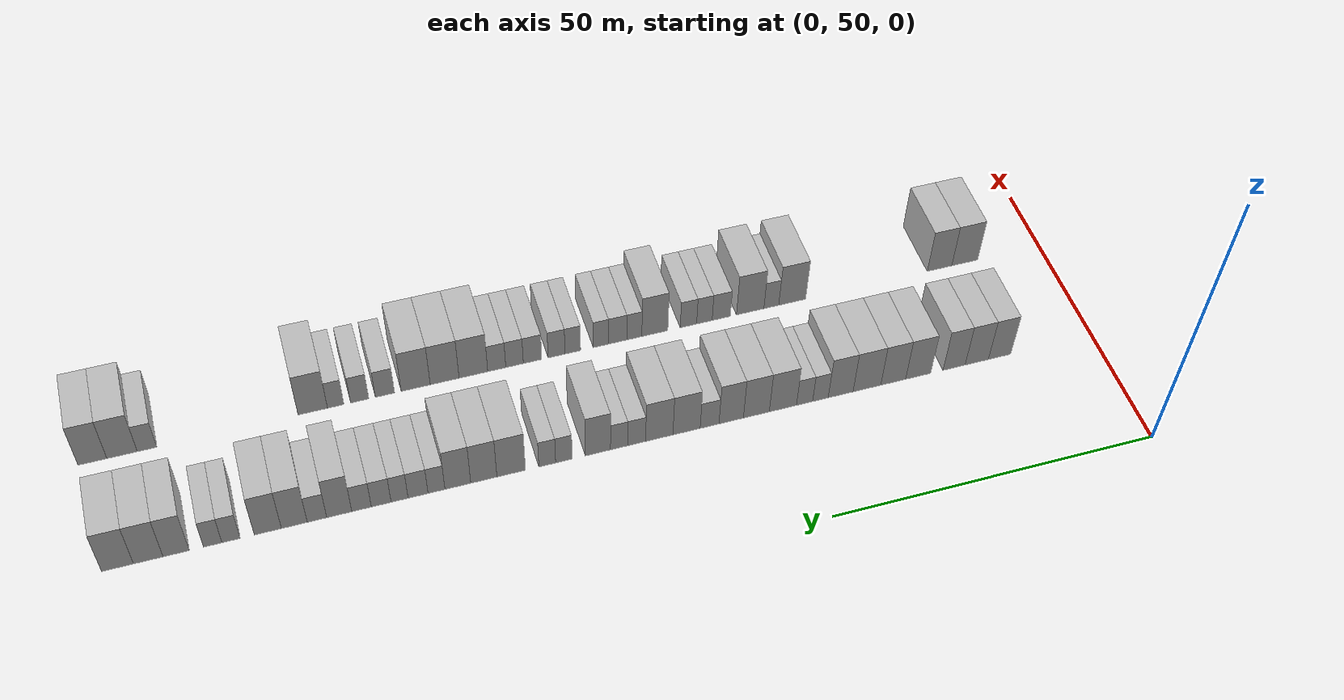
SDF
<sdf version="1.6">
 <world name="default">
  <model name="building_63">
   <static>1</static>
   <pose>25.0000 65.3889 0 0.000000 0.000000 0.000000</pose>
   <link name="link">
    <pose>0 0 4.50 0 0 0</pose>
    <collision name="collision"><geometry><box><size>10.0000 3.7011 9.0000</size></box></geometry></collision>
    <visual name="visual">
     <cast_shadows>0</cast_shadows>
     <geometry><box><size>10.0000 3.7011 9.0000</size></box></geometry>
     <material>
      <script>
       <uri>model://HANNAS_wall/materials/scripts</uri>
       <uri>model://HANNAS_wall/materials/textures</uri>
       <name>vrc/HANNAS_wall</name>
      </script>
     </material>
    </visual>
   </link>
  </model>
  <model name="building_64">
   <static>1</static>
   <pose>25.0000 69.1445 0 0.000000 0.000000 0.000000</pose>
   <link name="link">
    <pose>0 0 4.50 0 0 0</pose>
    <collision name="collision"><geometry><box><size>10.0000 3.8100 9.0000</size></box></geometry></collision>
    <visual name="visual">
     <cast_shadows>0</cast_shadows>
     <geometry><box><size>10.0000 3.8100 9.0000</size></box></geometry>
     <material>
      <script>
       <uri>model://HANNAS_wall/materials/scripts</uri>
       <uri>model://HANNAS_wall/materials/textures</uri>
       <name>vrc/HANNAS_wall</name>
      </script>
     </material>
    </visual>
   </link>
  </model>
  <model name="building_65">
   <static>1</static>
   <pose>25.0000 72.8542 0 0.000000 0.000000 0.000000</pose>
   <link name="link">
    <pose>0 0 4.50 0 0 0</pose>
    <collision name="collision"><geometry><box><size>10.0000 3.6094 9.0000</size></box></geometry></collision>
    <visual name="visual">
     <cast_shadows>0</cast_shadows>
     <geometry><box><size>10.0000 3.6094 9.0000</size></box></geometry>
     <material>
      <script>
       <uri>model://HANNAS_wall/materials/scripts</uri>
       <uri>model://HANNAS_wall/materials/textures</uri>
       <name>vrc/HANNAS_wall</name>
      </script>
     </material>
    </visual>
   </link>
  </model>
  <model name="building_66">
   <static>1</static>
   <pose>25.0000 78.6925 0 0.000000 0.000000 0.000000</pose>
   <link name="link">
    <pose>0 0 4.50 0 0 0</pose>
    <collision name="collision"><geometry><box><size>10.0000 4.0673 9.0000</size></box></geometry></collision>
    <visual name="visual">
     <cast_shadows>0</cast_shadows>
     <geometry><box><size>10.0000 4.0673 9.0000</size></box></geometry>
     <material>
      <script>
       <uri>model://HANNAS_wall/materials/scripts</uri>
       <uri>model://HANNAS_wall/materials/textures</uri>
       <name>vrc/HANNAS_wall</name>
      </script>
     </material>
    </visual>
   </link>
  </model>
  <model name="building_67">
   <static>1</static>
   <pose>25.0000 82.7289 0 0.000000 0.000000 0.000000</pose>
   <link name="link">
    <pose>0 0 4.50 0 0 0</pose>
    <collision name="collision"><geometry><box><size>10.0000 4.0054 9.0000</size></box></geometry></collision>
    <visual name="visual">
     <cast_shadows>0</cast_shadows>
     <geometry><box><size>10.0000 4.0054 9.0000</size></box></geometry>
     <material>
      <script>
       <uri>model://HANNAS_wall/materials/scripts</uri>
       <uri>model://HANNAS_wall/materials/textures</uri>
       <name>vrc/HANNAS_wall</name>
      </script>
     </material>
    </visual>
   </link>
  </model>
  <model name="building_68">
   <static>1</static>
   <pose>25.0000 86.9607 0 0.000000 0.000000 0.000000</pose>
   <link name="link">
    <pose>0 0 4.50 0 0 0</pose>
    <collision name="collision"><geometry><box><size>10.0000 4.4581 9.0000</size></box></geometry></collision>
    <visual name="visual">
     <cast_shadows>0</cast_shadows>
     <geometry><box><size>10.0000 4.4581 9.0000</size></box></geometry>
     <material>
      <script>
       <uri>model://HANNAS_wall/materials/scripts</uri>
       <uri>model://HANNAS_wall/materials/textures</uri>
       <name>vrc/HANNAS_wall</name>
      </script>
     </material>
    </visual>
   </link>
  </model>
  <model name="building_69">
   <static>1</static>
   <pose>25.0000 91.1785 0 0.000000 0.000000 0.000000</pose>
   <link name="link">
    <pose>0 0 4.50 0 0 0</pose>
    <collision name="collision"><geometry><box><size>10.0000 3.9776 9.0000</size></box></geometry></collision>
    <visual name="visual">
     <cast_shadows>0</cast_shadows>
     <geometry><box><size>10.0000 3.9776 9.0000</size></box></geometry>
     <material>
      <script>
       <uri>model://HANNAS_wall/materials/scripts</uri>
       <uri>model://HANNAS_wall/materials/textures</uri>
       <name>vrc/HANNAS_wall</name>
      </script>
     </material>
    </visual>
   </link>
  </model>
  <model name="building_70">
   <static>1</static>
   <pose>25.0000 94.4016 0 0.000000 0.000000 0.000000</pose>
   <link name="link">
    <pose>0 0 3.00 0 0 0</pose>
    <collision name="collision"><geometry><box><size>10.0000 2.4686 6.0000</size></box></geometry></collision>
    <visual name="visual">
     <cast_shadows>0</cast_shadows>
     <geometry><box><size>10.0000 2.4686 6.0000</size></box></geometry>
     <material>
      <script>
       <uri>model://HANNAS_wall/materials/scripts</uri>
       <uri>model://HANNAS_wall/materials/textures</uri>
       <name>vrc/HANNAS_wall</name>
      </script>
     </material>
    </visual>
   </link>
  </model>
  <model name="building_71">
   <static>1</static>
   <pose>25.0000 96.9137 0 0.000000 0.000000 0.000000</pose>
   <link name="link">
    <pose>0 0 3.00 0 0 0</pose>
    <collision name="collision"><geometry><box><size>10.0000 2.5554 6.0000</size></box></geometry></collision>
    <visual name="visual">
     <cast_shadows>0</cast_shadows>
     <geometry><box><size>10.0000 2.5554 6.0000</size></box></geometry>
     <material>
      <script>
       <uri>model://HANNAS_wall/materials/scripts</uri>
       <uri>model://HANNAS_wall/materials/textures</uri>
       <name>vrc/HANNAS_wall</name>
      </script>
     </material>
    </visual>
   </link>
  </model>
  <model name="building_72">
   <static>1</static>
   <pose>25.0000 100.3317 0 0.000000 0.000000 0.000000</pose>
   <link name="link">
    <pose>0 0 4.50 0 0 0</pose>
    <collision name="collision"><geometry><box><size>10.0000 4.2807 9.0000</size></box></geometry></collision>
    <visual name="visual">
     <cast_shadows>0</cast_shadows>
     <geometry><box><size>10.0000 4.2807 9.0000</size></box></geometry>
     <material>
      <script>
       <uri>model://HANNAS_wall/materials/scripts</uri>
       <uri>model://HANNAS_wall/materials/textures</uri>
       <name>vrc/HANNAS_wall</name>
      </script>
     </material>
    </visual>
   </link>
  </model>
  <model name="building_73">
   <static>1</static>
   <pose>25.0000 104.4996 0 0.000000 0.000000 0.000000</pose>
   <link name="link">
    <pose>0 0 4.50 0 0 0</pose>
    <collision name="collision"><geometry><box><size>10.0000 4.0551 9.0000</size></box></geometry></collision>
    <visual name="visual">
     <cast_shadows>0</cast_shadows>
     <geometry><box><size>10.0000 4.0551 9.0000</size></box></geometry>
     <material>
      <script>
       <uri>model://HANNAS_wall/materials/scripts</uri>
       <uri>model://HANNAS_wall/materials/textures</uri>
       <name>vrc/HANNAS_wall</name>
      </script>
     </material>
    </visual>
   </link>
  </model>
  <model name="building_74">
   <static>1</static>
   <pose>25.0000 108.4333 0 0.000000 0.000000 0.000000</pose>
   <link name="link">
    <pose>0 0 4.50 0 0 0</pose>
    <collision name="collision"><geometry><box><size>10.0000 3.8122 9.0000</size></box></geometry></collision>
    <visual name="visual">
     <cast_shadows>0</cast_shadows>
     <geometry><box><size>10.0000 3.8122 9.0000</size></box></geometry>
     <material>
      <script>
       <uri>model://HANNAS_wall/materials/scripts</uri>
       <uri>model://HANNAS_wall/materials/textures</uri>
       <name>vrc/HANNAS_wall</name>
      </script>
     </material>
    </visual>
   </link>
  </model>
  <model name="building_75">
   <static>1</static>
   <pose>25.0000 111.7978 0 0.000000 0.000000 0.000000</pose>
   <link name="link">
    <pose>0 0 3.00 0 0 0</pose>
    <collision name="collision"><geometry><box><size>10.0000 2.9169 6.0000</size></box></geometry></collision>
    <visual name="visual">
     <cast_shadows>0</cast_shadows>
     <geometry><box><size>10.0000 2.9169 6.0000</size></box></geometry>
     <material>
      <script>
       <uri>model://HANNAS_wall/materials/scripts</uri>
       <uri>model://HANNAS_wall/materials/textures</uri>
       <name>vrc/HANNAS_wall</name>
      </script>
     </material>
    </visual>
   </link>
  </model>
  <model name="building_76">
   <static>1</static>
   <pose>25.0000 115.3557 0 0.000000 0.000000 0.000000</pose>
   <link name="link">
    <pose>0 0 4.50 0 0 0</pose>
    <collision name="collision"><geometry><box><size>10.0000 4.1988 9.0000</size></box></geometry></collision>
    <visual name="visual">
     <cast_shadows>0</cast_shadows>
     <geometry><box><size>10.0000 4.1988 9.0000</size></box></geometry>
     <material>
      <script>
       <uri>model://HANNAS_wall/materials/scripts</uri>
       <uri>model://HANNAS_wall/materials/textures</uri>
       <name>vrc/HANNAS_wall</name>
      </script>
     </material>
    </visual>
   </link>
  </model>
  <model name="building_77">
   <static>1</static>
   <pose>25.0000 119.5593 0 0.000000 0.000000 0.000000</pose>
   <link name="link">
    <pose>0 0 4.50 0 0 0</pose>
    <collision name="collision"><geometry><box><size>10.0000 4.2084 9.0000</size></box></geometry></collision>
    <visual name="visual">
     <cast_shadows>0</cast_shadows>
     <geometry><box><size>10.0000 4.2084 9.0000</size></box></geometry>
     <material>
      <script>
       <uri>model://HANNAS_wall/materials/scripts</uri>
       <uri>model://HANNAS_wall/materials/textures</uri>
       <name>vrc/HANNAS_wall</name>
      </script>
     </material>
    </visual>
   </link>
  </model>
  <model name="building_78">
   <static>1</static>
   <pose>25.0000 123.0336 0 0.000000 0.000000 0.000000</pose>
   <link name="link">
    <pose>0 0 3.00 0 0 0</pose>
    <collision name="collision"><geometry><box><size>10.0000 2.7403 6.0000</size></box></geometry></collision>
    <visual name="visual">
     <cast_shadows>0</cast_shadows>
     <geometry><box><size>10.0000 2.7403 6.0000</size></box></geometry>
     <material>
      <script>
       <uri>model://HANNAS_wall/materials/scripts</uri>
       <uri>model://HANNAS_wall/materials/textures</uri>
       <name>vrc/HANNAS_wall</name>
      </script>
     </material>
    </visual>
   </link>
  </model>
  <model name="building_79">
   <static>1</static>
   <pose>25.0000 125.7088 0 0.000000 0.000000 0.000000</pose>
   <link name="link">
    <pose>0 0 3.00 0 0 0</pose>
    <collision name="collision"><geometry><box><size>10.0000 2.6101 6.0000</size></box></geometry></collision>
    <visual name="visual">
     <cast_shadows>0</cast_shadows>
     <geometry><box><size>10.0000 2.6101 6.0000</size></box></geometry>
     <material>
      <script>
       <uri>model://HANNAS_wall/materials/scripts</uri>
       <uri>model://HANNAS_wall/materials/textures</uri>
       <name>vrc/HANNAS_wall</name>
      </script>
     </material>
    </visual>
   </link>
  </model>
  <model name="building_80">
   <static>1</static>
   <pose>25.0000 128.9131 0 0.000000 0.000000 0.000000</pose>
   <link name="link">
    <pose>0 0 4.50 0 0 0</pose>
    <collision name="collision"><geometry><box><size>10.0000 3.7985 9.0000</size></box></geometry></collision>
    <visual name="visual">
     <cast_shadows>0</cast_shadows>
     <geometry><box><size>10.0000 3.7985 9.0000</size></box></geometry>
     <material>
      <script>
       <uri>model://HANNAS_wall/materials/scripts</uri>
       <uri>model://HANNAS_wall/materials/textures</uri>
       <name>vrc/HANNAS_wall</name>
      </script>
     </material>
    </visual>
   </link>
  </model>
  <model name="building_81">
   <static>1</static>
   <pose>25.0000 134.0607 0 0.000000 0.000000 0.000000</pose>
   <link name="link">
    <pose>0 0 3.00 0 0 0</pose>
    <collision name="collision"><geometry><box><size>10.0000 2.4966 6.0000</size></box></geometry></collision>
    <visual name="visual">
     <cast_shadows>0</cast_shadows>
     <geometry><box><size>10.0000 2.4966 6.0000</size></box></geometry>
     <material>
      <script>
       <uri>model://HANNAS_wall/materials/scripts</uri>
       <uri>model://HANNAS_wall/materials/textures</uri>
       <name>vrc/HANNAS_wall</name>
      </script>
     </material>
    </visual>
   </link>
  </model>
  <model name="building_82">
   <static>1</static>
   <pose>25.0000 136.5666 0 0.000000 0.000000 0.000000</pose>
   <link name="link">
    <pose>0 0 3.00 0 0 0</pose>
    <collision name="collision"><geometry><box><size>10.0000 2.5152 6.0000</size></box></geometry></collision>
    <visual name="visual">
     <cast_shadows>0</cast_shadows>
     <geometry><box><size>10.0000 2.5152 6.0000</size></box></geometry>
     <material>
      <script>
       <uri>model://HANNAS_wall/materials/scripts</uri>
       <uri>model://HANNAS_wall/materials/textures</uri>
       <name>vrc/HANNAS_wall</name>
      </script>
     </material>
    </visual>
   </link>
  </model>
  <model name="building_83">
   <static>1</static>
   <pose>25.0000 141.9532 0 0.000000 0.000000 0.000000</pose>
   <link name="link">
    <pose>0 0 4.50 0 0 0</pose>
    <collision name="collision"><geometry><box><size>10.0000 4.2581 9.0000</size></box></geometry></collision>
    <visual name="visual">
     <cast_shadows>0</cast_shadows>
     <geometry><box><size>10.0000 4.2581 9.0000</size></box></geometry>
     <material>
      <script>
       <uri>model://HANNAS_wall/materials/scripts</uri>
       <uri>model://HANNAS_wall/materials/textures</uri>
       <name>vrc/HANNAS_wall</name>
      </script>
     </material>
    </visual>
   </link>
  </model>
  <model name="building_84">
   <static>1</static>
   <pose>25.0000 146.0187 0 0.000000 0.000000 0.000000</pose>
   <link name="link">
    <pose>0 0 4.50 0 0 0</pose>
    <collision name="collision"><geometry><box><size>10.0000 3.8728 9.0000</size></box></geometry></collision>
    <visual name="visual">
     <cast_shadows>0</cast_shadows>
     <geometry><box><size>10.0000 3.8728 9.0000</size></box></geometry>
     <material>
      <script>
       <uri>model://HANNAS_wall/materials/scripts</uri>
       <uri>model://HANNAS_wall/materials/textures</uri>
       <name>vrc/HANNAS_wall</name>
      </script>
     </material>
    </visual>
   </link>
  </model>
  <model name="building_85">
   <static>1</static>
   <pose>25.0000 149.8586 0 0.000000 0.000000 0.000000</pose>
   <link name="link">
    <pose>0 0 4.50 0 0 0</pose>
    <collision name="collision"><geometry><box><size>10.0000 3.8070 9.0000</size></box></geometry></collision>
    <visual name="visual">
     <cast_shadows>0</cast_shadows>
     <geometry><box><size>10.0000 3.8070 9.0000</size></box></geometry>
     <material>
      <script>
       <uri>model://HANNAS_wall/materials/scripts</uri>
       <uri>model://HANNAS_wall/materials/textures</uri>
       <name>vrc/HANNAS_wall</name>
      </script>
     </material>
    </visual>
   </link>
  </model>
  <model name="building_86">
   <static>1</static>
   <pose>25.0000 153.0011 0 0.000000 0.000000 0.000000</pose>
   <link name="link">
    <pose>0 0 3.00 0 0 0</pose>
    <collision name="collision"><geometry><box><size>10.0000 2.4779 6.0000</size></box></geometry></collision>
    <visual name="visual">
     <cast_shadows>0</cast_shadows>
     <geometry><box><size>10.0000 2.4779 6.0000</size></box></geometry>
     <material>
      <script>
       <uri>model://HANNAS_wall/materials/scripts</uri>
       <uri>model://HANNAS_wall/materials/textures</uri>
       <name>vrc/HANNAS_wall</name>
      </script>
     </material>
    </visual>
   </link>
  </model>
  <model name="building_87">
   <static>1</static>
   <pose>25.0000 155.6982 0 0.000000 0.000000 0.000000</pose>
   <link name="link">
    <pose>0 0 3.00 0 0 0</pose>
    <collision name="collision"><geometry><box><size>10.0000 2.9162 6.0000</size></box></geometry></collision>
    <visual name="visual">
     <cast_shadows>0</cast_shadows>
     <geometry><box><size>10.0000 2.9162 6.0000</size></box></geometry>
     <material>
      <script>
       <uri>model://HANNAS_wall/materials/scripts</uri>
       <uri>model://HANNAS_wall/materials/textures</uri>
       <name>vrc/HANNAS_wall</name>
      </script>
     </material>
    </visual>
   </link>
  </model>
  <model name="building_88">
   <static>1</static>
   <pose>25.0000 158.3941 0 0.000000 0.000000 0.000000</pose>
   <link name="link">
    <pose>0 0 3.00 0 0 0</pose>
    <collision name="collision"><geometry><box><size>10.0000 2.4756 6.0000</size></box></geometry></collision>
    <visual name="visual">
     <cast_shadows>0</cast_shadows>
     <geometry><box><size>10.0000 2.4756 6.0000</size></box></geometry>
     <material>
      <script>
       <uri>model://HANNAS_wall/materials/scripts</uri>
       <uri>model://HANNAS_wall/materials/textures</uri>
       <name>vrc/HANNAS_wall</name>
      </script>
     </material>
    </visual>
   </link>
  </model>
  <model name="building_89">
   <static>1</static>
   <pose>25.0000 161.0663 0 0.000000 0.000000 0.000000</pose>
   <link name="link">
    <pose>0 0 3.00 0 0 0</pose>
    <collision name="collision"><geometry><box><size>10.0000 2.8687 6.0000</size></box></geometry></collision>
    <visual name="visual">
     <cast_shadows>0</cast_shadows>
     <geometry><box><size>10.0000 2.8687 6.0000</size></box></geometry>
     <material>
      <script>
       <uri>model://HANNAS_wall/materials/scripts</uri>
       <uri>model://HANNAS_wall/materials/textures</uri>
       <name>vrc/HANNAS_wall</name>
      </script>
     </material>
    </visual>
   </link>
  </model>
  <model name="building_90">
   <static>1</static>
   <pose>25.0000 163.9121 0 0.000000 0.000000 0.000000</pose>
   <link name="link">
    <pose>0 0 3.00 0 0 0</pose>
    <collision name="collision"><geometry><box><size>10.0000 2.8230 6.0000</size></box></geometry></collision>
    <visual name="visual">
     <cast_shadows>0</cast_shadows>
     <geometry><box><size>10.0000 2.8230 6.0000</size></box></geometry>
     <material>
      <script>
       <uri>model://HANNAS_wall/materials/scripts</uri>
       <uri>model://HANNAS_wall/materials/textures</uri>
       <name>vrc/HANNAS_wall</name>
      </script>
     </material>
    </visual>
   </link>
  </model>
  <model name="building_91">
   <static>1</static>
   <pose>25.0000 167.1286 0 0.000000 0.000000 0.000000</pose>
   <link name="link">
    <pose>0 0 4.50 0 0 0</pose>
    <collision name="collision"><geometry><box><size>10.0000 3.6099 9.0000</size></box></geometry></collision>
    <visual name="visual">
     <cast_shadows>0</cast_shadows>
     <geometry><box><size>10.0000 3.6099 9.0000</size></box></geometry>
     <material>
      <script>
       <uri>model://HANNAS_wall/materials/scripts</uri>
       <uri>model://HANNAS_wall/materials/textures</uri>
       <name>vrc/HANNAS_wall</name>
      </script>
     </material>
    </visual>
   </link>
  </model>
  <model name="building_92">
   <static>1</static>
   <pose>25.0000 170.3273 0 0.000000 0.000000 0.000000</pose>
   <link name="link">
    <pose>0 0 3.00 0 0 0</pose>
    <collision name="collision"><geometry><box><size>10.0000 2.7876 6.0000</size></box></geometry></collision>
    <visual name="visual">
     <cast_shadows>0</cast_shadows>
     <geometry><box><size>10.0000 2.7876 6.0000</size></box></geometry>
     <material>
      <script>
       <uri>model://HANNAS_wall/materials/scripts</uri>
       <uri>model://HANNAS_wall/materials/textures</uri>
       <name>vrc/HANNAS_wall</name>
      </script>
     </material>
    </visual>
   </link>
  </model>
  <model name="building_93">
   <static>1</static>
   <pose>25.0000 173.5699 0 0.000000 0.000000 0.000000</pose>
   <link name="link">
    <pose>0 0 4.50 0 0 0</pose>
    <collision name="collision"><geometry><box><size>10.0000 3.6975 9.0000</size></box></geometry></collision>
    <visual name="visual">
     <cast_shadows>0</cast_shadows>
     <geometry><box><size>10.0000 3.6975 9.0000</size></box></geometry>
     <material>
      <script>
       <uri>model://HANNAS_wall/materials/scripts</uri>
       <uri>model://HANNAS_wall/materials/textures</uri>
       <name>vrc/HANNAS_wall</name>
      </script>
     </material>
    </visual>
   </link>
  </model>
  <model name="building_94">
   <static>1</static>
   <pose>25.0000 177.3409 0 0.000000 0.000000 0.000000</pose>
   <link name="link">
    <pose>0 0 4.50 0 0 0</pose>
    <collision name="collision"><geometry><box><size>10.0000 3.8446 9.0000</size></box></geometry></collision>
    <visual name="visual">
     <cast_shadows>0</cast_shadows>
     <geometry><box><size>10.0000 3.8446 9.0000</size></box></geometry>
     <material>
      <script>
       <uri>model://HANNAS_wall/materials/scripts</uri>
       <uri>model://HANNAS_wall/materials/textures</uri>
       <name>vrc/HANNAS_wall</name>
      </script>
     </material>
    </visual>
   </link>
  </model>
  <model name="building_95">
   <static>1</static>
   <pose>25.0000 182.5454 0 0.000000 0.000000 0.000000</pose>
   <link name="link">
    <pose>0 0 3.00 0 0 0</pose>
    <collision name="collision"><geometry><box><size>10.0000 2.5645 6.0000</size></box></geometry></collision>
    <visual name="visual">
     <cast_shadows>0</cast_shadows>
     <geometry><box><size>10.0000 2.5645 6.0000</size></box></geometry>
     <material>
      <script>
       <uri>model://HANNAS_wall/materials/scripts</uri>
       <uri>model://HANNAS_wall/materials/textures</uri>
       <name>vrc/HANNAS_wall</name>
      </script>
     </material>
    </visual>
   </link>
  </model>
  <model name="building_96">
   <static>1</static>
   <pose>25.0000 185.1183 0 0.000000 0.000000 0.000000</pose>
   <link name="link">
    <pose>0 0 3.00 0 0 0</pose>
    <collision name="collision"><geometry><box><size>10.0000 2.5812 6.0000</size></box></geometry></collision>
    <visual name="visual">
     <cast_shadows>0</cast_shadows>
     <geometry><box><size>10.0000 2.5812 6.0000</size></box></geometry>
     <material>
      <script>
       <uri>model://HANNAS_wall/materials/scripts</uri>
       <uri>model://HANNAS_wall/materials/textures</uri>
       <name>vrc/HANNAS_wall</name>
      </script>
     </material>
    </visual>
   </link>
  </model>
  <model name="building_97">
   <static>1</static>
   <pose>25.0000 190.2369 0 0.000000 0.000000 0.000000</pose>
   <link name="link">
    <pose>0 0 4.50 0 0 0</pose>
    <collision name="collision"><geometry><box><size>10.0000 3.6561 9.0000</size></box></geometry></collision>
    <visual name="visual">
     <cast_shadows>0</cast_shadows>
     <geometry><box><size>10.0000 3.6561 9.0000</size></box></geometry>
     <material>
      <script>
       <uri>model://HANNAS_wall/materials/scripts</uri>
       <uri>model://HANNAS_wall/materials/textures</uri>
       <name>vrc/HANNAS_wall</name>
      </script>
     </material>
    </visual>
   </link>
  </model>
  <model name="building_98">
   <static>1</static>
   <pose>25.0000 194.1171 0 0.000000 0.000000 0.000000</pose>
   <link name="link">
    <pose>0 0 4.50 0 0 0</pose>
    <collision name="collision"><geometry><box><size>10.0000 4.1044 9.0000</size></box></geometry></collision>
    <visual name="visual">
     <cast_shadows>0</cast_shadows>
     <geometry><box><size>10.0000 4.1044 9.0000</size></box></geometry>
     <material>
      <script>
       <uri>model://HANNAS_wall/materials/scripts</uri>
       <uri>model://HANNAS_wall/materials/textures</uri>
       <name>vrc/HANNAS_wall</name>
      </script>
     </material>
    </visual>
   </link>
  </model>
  <model name="building_99">
   <static>1</static>
   <pose>25.0000 198.3697 0 0.000000 0.000000 0.000000</pose>
   <link name="link">
    <pose>0 0 4.50 0 0 0</pose>
    <collision name="collision"><geometry><box><size>10.0000 4.4010 9.0000</size></box></geometry></collision>
    <visual name="visual">
     <cast_shadows>0</cast_shadows>
     <geometry><box><size>10.0000 4.4010 9.0000</size></box></geometry>
     <material>
      <script>
       <uri>model://HANNAS_wall/materials/scripts</uri>
       <uri>model://HANNAS_wall/materials/textures</uri>
       <name>vrc/HANNAS_wall</name>
      </script>
     </material>
    </visual>
   </link>
  </model>
  <model name="building_166">
   <static>1</static>
   <pose>44.0000 62.8871 0 0.000000 0.000000 0.000000</pose>
   <link name="link">
    <pose>0 0 4.50 0 0 0</pose>
    <collision name="collision"><geometry><box><size>10.0000 4.4443 9.0000</size></box></geometry></collision>
    <visual name="visual">
     <cast_shadows>0</cast_shadows>
     <geometry><box><size>10.0000 4.4443 9.0000</size></box></geometry>
     <material>
      <script>
       <uri>model://HANNAS_wall/materials/scripts</uri>
       <uri>model://HANNAS_wall/materials/textures</uri>
       <name>vrc/HANNAS_wall</name>
      </script>
     </material>
    </visual>
   </link>
  </model>
  <model name="building_167">
   <static>1</static>
   <pose>44.0000 67.1976 0 0.000000 0.000000 0.000000</pose>
   <link name="link">
    <pose>0 0 4.50 0 0 0</pose>
    <collision name="collision"><geometry><box><size>10.0000 4.1765 9.0000</size></box></geometry></collision>
    <visual name="visual">
     <cast_shadows>0</cast_shadows>
     <geometry><box><size>10.0000 4.1765 9.0000</size></box></geometry>
     <material>
      <script>
       <uri>model://HANNAS_wall/materials/scripts</uri>
       <uri>model://HANNAS_wall/materials/textures</uri>
       <name>vrc/HANNAS_wall</name>
      </script>
     </material>
    </visual>
   </link>
  </model>
  <model name="building_168">
   <static>1</static>
   <pose>44.0000 91.9687 0 0.000000 0.000000 0.000000</pose>
   <link name="link">
    <pose>0 0 4.50 0 0 0</pose>
    <collision name="collision"><geometry><box><size>10.0000 4.4552 9.0000</size></box></geometry></collision>
    <visual name="visual">
     <cast_shadows>0</cast_shadows>
     <geometry><box><size>10.0000 4.4552 9.0000</size></box></geometry>
     <material>
      <script>
       <uri>model://HANNAS_wall/materials/scripts</uri>
       <uri>model://HANNAS_wall/materials/textures</uri>
       <name>vrc/HANNAS_wall</name>
      </script>
     </material>
    </visual>
   </link>
  </model>
  <model name="building_169">
   <static>1</static>
   <pose>44.0000 95.4177 0 0.000000 0.000000 0.000000</pose>
   <link name="link">
    <pose>0 0 3.00 0 0 0</pose>
    <collision name="collision"><geometry><box><size>10.0000 2.4429 6.0000</size></box></geometry></collision>
    <visual name="visual">
     <cast_shadows>0</cast_shadows>
     <geometry><box><size>10.0000 2.4429 6.0000</size></box></geometry>
     <material>
      <script>
       <uri>model://HANNAS_wall/materials/scripts</uri>
       <uri>model://HANNAS_wall/materials/textures</uri>
       <name>vrc/HANNAS_wall</name>
      </script>
     </material>
    </visual>
   </link>
  </model>
  <model name="building_170">
   <static>1</static>
   <pose>44.0000 98.8872 0 0.000000 0.000000 0.000000</pose>
   <link name="link">
    <pose>0 0 4.50 0 0 0</pose>
    <collision name="collision"><geometry><box><size>10.0000 4.4959 9.0000</size></box></geometry></collision>
    <visual name="visual">
     <cast_shadows>0</cast_shadows>
     <geometry><box><size>10.0000 4.4959 9.0000</size></box></geometry>
     <material>
      <script>
       <uri>model://HANNAS_wall/materials/scripts</uri>
       <uri>model://HANNAS_wall/materials/textures</uri>
       <name>vrc/HANNAS_wall</name>
      </script>
     </material>
    </visual>
   </link>
  </model>
  <model name="building_171">
   <static>1</static>
   <pose>44.0000 103.6197 0 0.000000 0.000000 0.000000</pose>
   <link name="link">
    <pose>0 0 3.00 0 0 0</pose>
    <collision name="collision"><geometry><box><size>10.0000 2.9692 6.0000</size></box></geometry></collision>
    <visual name="visual">
     <cast_shadows>0</cast_shadows>
     <geometry><box><size>10.0000 2.9692 6.0000</size></box></geometry>
     <material>
      <script>
       <uri>model://HANNAS_wall/materials/scripts</uri>
       <uri>model://HANNAS_wall/materials/textures</uri>
       <name>vrc/HANNAS_wall</name>
      </script>
     </material>
    </visual>
   </link>
  </model>
  <model name="building_172">
   <static>1</static>
   <pose>44.0000 106.3621 0 0.000000 0.000000 0.000000</pose>
   <link name="link">
    <pose>0 0 3.00 0 0 0</pose>
    <collision name="collision"><geometry><box><size>10.0000 2.5154 6.0000</size></box></geometry></collision>
    <visual name="visual">
     <cast_shadows>0</cast_shadows>
     <geometry><box><size>10.0000 2.5154 6.0000</size></box></geometry>
     <material>
      <script>
       <uri>model://HANNAS_wall/materials/scripts</uri>
       <uri>model://HANNAS_wall/materials/textures</uri>
       <name>vrc/HANNAS_wall</name>
      </script>
     </material>
    </visual>
   </link>
  </model>
  <model name="building_173">
   <static>1</static>
   <pose>44.0000 108.9497 0 0.000000 0.000000 0.000000</pose>
   <link name="link">
    <pose>0 0 3.00 0 0 0</pose>
    <collision name="collision"><geometry><box><size>10.0000 2.6600 6.0000</size></box></geometry></collision>
    <visual name="visual">
     <cast_shadows>0</cast_shadows>
     <geometry><box><size>10.0000 2.6600 6.0000</size></box></geometry>
     <material>
      <script>
       <uri>model://HANNAS_wall/materials/scripts</uri>
       <uri>model://HANNAS_wall/materials/textures</uri>
       <name>vrc/HANNAS_wall</name>
      </script>
     </material>
    </visual>
   </link>
  </model>
  <model name="building_174">
   <static>1</static>
   <pose>44.0000 114.3729 0 0.000000 0.000000 0.000000</pose>
   <link name="link">
    <pose>0 0 4.50 0 0 0</pose>
    <collision name="collision"><geometry><box><size>10.0000 4.1863 9.0000</size></box></geometry></collision>
    <visual name="visual">
     <cast_shadows>0</cast_shadows>
     <geometry><box><size>10.0000 4.1863 9.0000</size></box></geometry>
     <material>
      <script>
       <uri>model://HANNAS_wall/materials/scripts</uri>
       <uri>model://HANNAS_wall/materials/textures</uri>
       <name>vrc/HANNAS_wall</name>
      </script>
     </material>
    </visual>
   </link>
  </model>
  <model name="building_175">
   <static>1</static>
   <pose>44.0000 117.6731 0 0.000000 0.000000 0.000000</pose>
   <link name="link">
    <pose>0 0 3.00 0 0 0</pose>
    <collision name="collision"><geometry><box><size>10.0000 2.4142 6.0000</size></box></geometry></collision>
    <visual name="visual">
     <cast_shadows>0</cast_shadows>
     <geometry><box><size>10.0000 2.4142 6.0000</size></box></geometry>
     <material>
      <script>
       <uri>model://HANNAS_wall/materials/scripts</uri>
       <uri>model://HANNAS_wall/materials/textures</uri>
       <name>vrc/HANNAS_wall</name>
      </script>
     </material>
    </visual>
   </link>
  </model>
  <model name="building_176">
   <static>1</static>
   <pose>44.0000 120.3280 0 0.000000 0.000000 0.000000</pose>
   <link name="link">
    <pose>0 0 3.00 0 0 0</pose>
    <collision name="collision"><geometry><box><size>10.0000 2.8956 6.0000</size></box></geometry></collision>
    <visual name="visual">
     <cast_shadows>0</cast_shadows>
     <geometry><box><size>10.0000 2.8956 6.0000</size></box></geometry>
     <material>
      <script>
       <uri>model://HANNAS_wall/materials/scripts</uri>
       <uri>model://HANNAS_wall/materials/textures</uri>
       <name>vrc/HANNAS_wall</name>
      </script>
     </material>
    </visual>
   </link>
  </model>
  <model name="building_177">
   <static>1</static>
   <pose>44.0000 122.9932 0 0.000000 0.000000 0.000000</pose>
   <link name="link">
    <pose>0 0 3.00 0 0 0</pose>
    <collision name="collision"><geometry><box><size>10.0000 2.4347 6.0000</size></box></geometry></collision>
    <visual name="visual">
     <cast_shadows>0</cast_shadows>
     <geometry><box><size>10.0000 2.4347 6.0000</size></box></geometry>
     <material>
      <script>
       <uri>model://HANNAS_wall/materials/scripts</uri>
       <uri>model://HANNAS_wall/materials/textures</uri>
       <name>vrc/HANNAS_wall</name>
      </script>
     </material>
    </visual>
   </link>
  </model>
  <model name="building_178">
   <static>1</static>
   <pose>44.0000 127.4466 0 0.000000 0.000000 0.000000</pose>
   <link name="link">
    <pose>0 0 3.00 0 0 0</pose>
    <collision name="collision"><geometry><box><size>10.0000 2.4722 6.0000</size></box></geometry></collision>
    <visual name="visual">
     <cast_shadows>0</cast_shadows>
     <geometry><box><size>10.0000 2.4722 6.0000</size></box></geometry>
     <material>
      <script>
       <uri>model://HANNAS_wall/materials/scripts</uri>
       <uri>model://HANNAS_wall/materials/textures</uri>
       <name>vrc/HANNAS_wall</name>
      </script>
     </material>
    </visual>
   </link>
  </model>
  <model name="building_179">
   <static>1</static>
   <pose>44.0000 130.0129 0 0.000000 0.000000 0.000000</pose>
   <link name="link">
    <pose>0 0 3.00 0 0 0</pose>
    <collision name="collision"><geometry><box><size>10.0000 2.6603 6.0000</size></box></geometry></collision>
    <visual name="visual">
     <cast_shadows>0</cast_shadows>
     <geometry><box><size>10.0000 2.6603 6.0000</size></box></geometry>
     <material>
      <script>
       <uri>model://HANNAS_wall/materials/scripts</uri>
       <uri>model://HANNAS_wall/materials/textures</uri>
       <name>vrc/HANNAS_wall</name>
      </script>
     </material>
    </visual>
   </link>
  </model>
  <model name="building_180">
   <static>1</static>
   <pose>44.0000 133.7867 0 0.000000 0.000000 0.000000</pose>
   <link name="link">
    <pose>0 0 3.00 0 0 0</pose>
    <collision name="collision"><geometry><box><size>10.0000 2.8873 6.0000</size></box></geometry></collision>
    <visual name="visual">
     <cast_shadows>0</cast_shadows>
     <geometry><box><size>10.0000 2.8873 6.0000</size></box></geometry>
     <material>
      <script>
       <uri>model://HANNAS_wall/materials/scripts</uri>
       <uri>model://HANNAS_wall/materials/textures</uri>
       <name>vrc/HANNAS_wall</name>
      </script>
     </material>
    </visual>
   </link>
  </model>
  <model name="building_181">
   <static>1</static>
   <pose>44.0000 136.6006 0 0.000000 0.000000 0.000000</pose>
   <link name="link">
    <pose>0 0 3.00 0 0 0</pose>
    <collision name="collision"><geometry><box><size>10.0000 2.7404 6.0000</size></box></geometry></collision>
    <visual name="visual">
     <cast_shadows>0</cast_shadows>
     <geometry><box><size>10.0000 2.7404 6.0000</size></box></geometry>
     <material>
      <script>
       <uri>model://HANNAS_wall/materials/scripts</uri>
       <uri>model://HANNAS_wall/materials/textures</uri>
       <name>vrc/HANNAS_wall</name>
      </script>
     </material>
    </visual>
   </link>
  </model>
  <model name="building_182">
   <static>1</static>
   <pose>44.0000 139.3759 0 0.000000 0.000000 0.000000</pose>
   <link name="link">
    <pose>0 0 3.00 0 0 0</pose>
    <collision name="collision"><geometry><box><size>10.0000 2.8103 6.0000</size></box></geometry></collision>
    <visual name="visual">
     <cast_shadows>0</cast_shadows>
     <geometry><box><size>10.0000 2.8103 6.0000</size></box></geometry>
     <material>
      <script>
       <uri>model://HANNAS_wall/materials/scripts</uri>
       <uri>model://HANNAS_wall/materials/textures</uri>
       <name>vrc/HANNAS_wall</name>
      </script>
     </material>
    </visual>
   </link>
  </model>
  <model name="building_183">
   <static>1</static>
   <pose>44.0000 143.0000 0 0.000000 0.000000 0.000000</pose>
   <link name="link">
    <pose>0 0 4.50 0 0 0</pose>
    <collision name="collision"><geometry><box><size>10.0000 4.4378 9.0000</size></box></geometry></collision>
    <visual name="visual">
     <cast_shadows>0</cast_shadows>
     <geometry><box><size>10.0000 4.4378 9.0000</size></box></geometry>
     <material>
      <script>
       <uri>model://HANNAS_wall/materials/scripts</uri>
       <uri>model://HANNAS_wall/materials/textures</uri>
       <name>vrc/HANNAS_wall</name>
      </script>
     </material>
    </visual>
   </link>
  </model>
  <model name="building_184">
   <static>1</static>
   <pose>44.0000 147.4416 0 0.000000 0.000000 0.000000</pose>
   <link name="link">
    <pose>0 0 4.50 0 0 0</pose>
    <collision name="collision"><geometry><box><size>10.0000 4.4455 9.0000</size></box></geometry></collision>
    <visual name="visual">
     <cast_shadows>0</cast_shadows>
     <geometry><box><size>10.0000 4.4455 9.0000</size></box></geometry>
     <material>
      <script>
       <uri>model://HANNAS_wall/materials/scripts</uri>
       <uri>model://HANNAS_wall/materials/textures</uri>
       <name>vrc/HANNAS_wall</name>
      </script>
     </material>
    </visual>
   </link>
  </model>
  <model name="building_185">
   <static>1</static>
   <pose>44.0000 151.8899 0 0.000000 0.000000 0.000000</pose>
   <link name="link">
    <pose>0 0 4.50 0 0 0</pose>
    <collision name="collision"><geometry><box><size>10.0000 4.4511 9.0000</size></box></geometry></collision>
    <visual name="visual">
     <cast_shadows>0</cast_shadows>
     <geometry><box><size>10.0000 4.4511 9.0000</size></box></geometry>
     <material>
      <script>
       <uri>model://HANNAS_wall/materials/scripts</uri>
       <uri>model://HANNAS_wall/materials/textures</uri>
       <name>vrc/HANNAS_wall</name>
      </script>
     </material>
    </visual>
   </link>
  </model>
  <model name="building_186">
   <static>1</static>
   <pose>44.0000 156.5811 0 0.000000 0.000000 0.000000</pose>
   <link name="link">
    <pose>0 0 3.00 0 0 0</pose>
    <collision name="collision"><geometry><box><size>10.0000 2.9312 6.0000</size></box></geometry></collision>
    <visual name="visual">
     <cast_shadows>0</cast_shadows>
     <geometry><box><size>10.0000 2.9312 6.0000</size></box></geometry>
     <material>
      <script>
       <uri>model://HANNAS_wall/materials/scripts</uri>
       <uri>model://HANNAS_wall/materials/textures</uri>
       <name>vrc/HANNAS_wall</name>
      </script>
     </material>
    </visual>
   </link>
  </model>
  <model name="building_187">
   <static>1</static>
   <pose>44.0000 160.4248 0 0.000000 0.000000 0.000000</pose>
   <link name="link">
    <pose>0 0 3.00 0 0 0</pose>
    <collision name="collision"><geometry><box><size>10.0000 2.7562 6.0000</size></box></geometry></collision>
    <visual name="visual">
     <cast_shadows>0</cast_shadows>
     <geometry><box><size>10.0000 2.7562 6.0000</size></box></geometry>
     <material>
      <script>
       <uri>model://HANNAS_wall/materials/scripts</uri>
       <uri>model://HANNAS_wall/materials/textures</uri>
       <name>vrc/HANNAS_wall</name>
      </script>
     </material>
    </visual>
   </link>
  </model>
  <model name="building_188">
   <static>1</static>
   <pose>44.0000 164.0437 0 0.000000 0.000000 0.000000</pose>
   <link name="link">
    <pose>0 0 3.00 0 0 0</pose>
    <collision name="collision"><geometry><box><size>10.0000 2.4816 6.0000</size></box></geometry></collision>
    <visual name="visual">
     <cast_shadows>0</cast_shadows>
     <geometry><box><size>10.0000 2.4816 6.0000</size></box></geometry>
     <material>
      <script>
       <uri>model://HANNAS_wall/materials/scripts</uri>
       <uri>model://HANNAS_wall/materials/textures</uri>
       <name>vrc/HANNAS_wall</name>
      </script>
     </material>
    </visual>
   </link>
  </model>
  <model name="building_189">
   <static>1</static>
   <pose>44.0000 167.4894 0 0.000000 0.000000 0.000000</pose>
   <link name="link">
    <pose>0 0 4.50 0 0 0</pose>
    <collision name="collision"><geometry><box><size>10.0000 4.4099 9.0000</size></box></geometry></collision>
    <visual name="visual">
     <cast_shadows>0</cast_shadows>
     <geometry><box><size>10.0000 4.4099 9.0000</size></box></geometry>
     <material>
      <script>
       <uri>model://HANNAS_wall/materials/scripts</uri>
       <uri>model://HANNAS_wall/materials/textures</uri>
       <name>vrc/HANNAS_wall</name>
      </script>
     </material>
    </visual>
   </link>
  </model>
  <model name="building_190">
   <static>1</static>
   <pose>44.0000 191.9470 0 0.000000 0.000000 0.000000</pose>
   <link name="link">
    <pose>0 0 3.00 0 0 0</pose>
    <collision name="collision"><geometry><box><size>10.0000 2.8350 6.0000</size></box></geometry></collision>
    <visual name="visual">
     <cast_shadows>0</cast_shadows>
     <geometry><box><size>10.0000 2.8350 6.0000</size></box></geometry>
     <material>
      <script>
       <uri>model://HANNAS_wall/materials/scripts</uri>
       <uri>model://HANNAS_wall/materials/textures</uri>
       <name>vrc/HANNAS_wall</name>
      </script>
     </material>
    </visual>
   </link>
  </model>
  <model name="building_191">
   <static>1</static>
   <pose>44.0000 195.5683 0 0.000000 0.000000 0.000000</pose>
   <link name="link">
    <pose>0 0 4.50 0 0 0</pose>
    <collision name="collision"><geometry><box><size>10.0000 4.4076 9.0000</size></box></geometry></collision>
    <visual name="visual">
     <cast_shadows>0</cast_shadows>
     <geometry><box><size>10.0000 4.4076 9.0000</size></box></geometry>
     <material>
      <script>
       <uri>model://HANNAS_wall/materials/scripts</uri>
       <uri>model://HANNAS_wall/materials/textures</uri>
       <name>vrc/HANNAS_wall</name>
      </script>
     </material>
    </visual>
   </link>
  </model>
  <model name="building_192">
   <static>1</static>
   <pose>44.0000 199.8457 0 0.000000 0.000000 0.000000</pose>
   <link name="link">
    <pose>0 0 4.50 0 0 0</pose>
    <collision name="collision"><geometry><box><size>10.0000 4.1472 9.0000</size></box></geometry></collision>
    <visual name="visual">
     <cast_shadows>0</cast_shadows>
     <geometry><box><size>10.0000 4.1472 9.0000</size></box></geometry>
     <material>
      <script>
       <uri>model://HANNAS_wall/materials/scripts</uri>
       <uri>model://HANNAS_wall/materials/textures</uri>
       <name>vrc/HANNAS_wall</name>
      </script>
     </material>
    </visual>
   </link>
  </model>
 </world>
</sdf>
